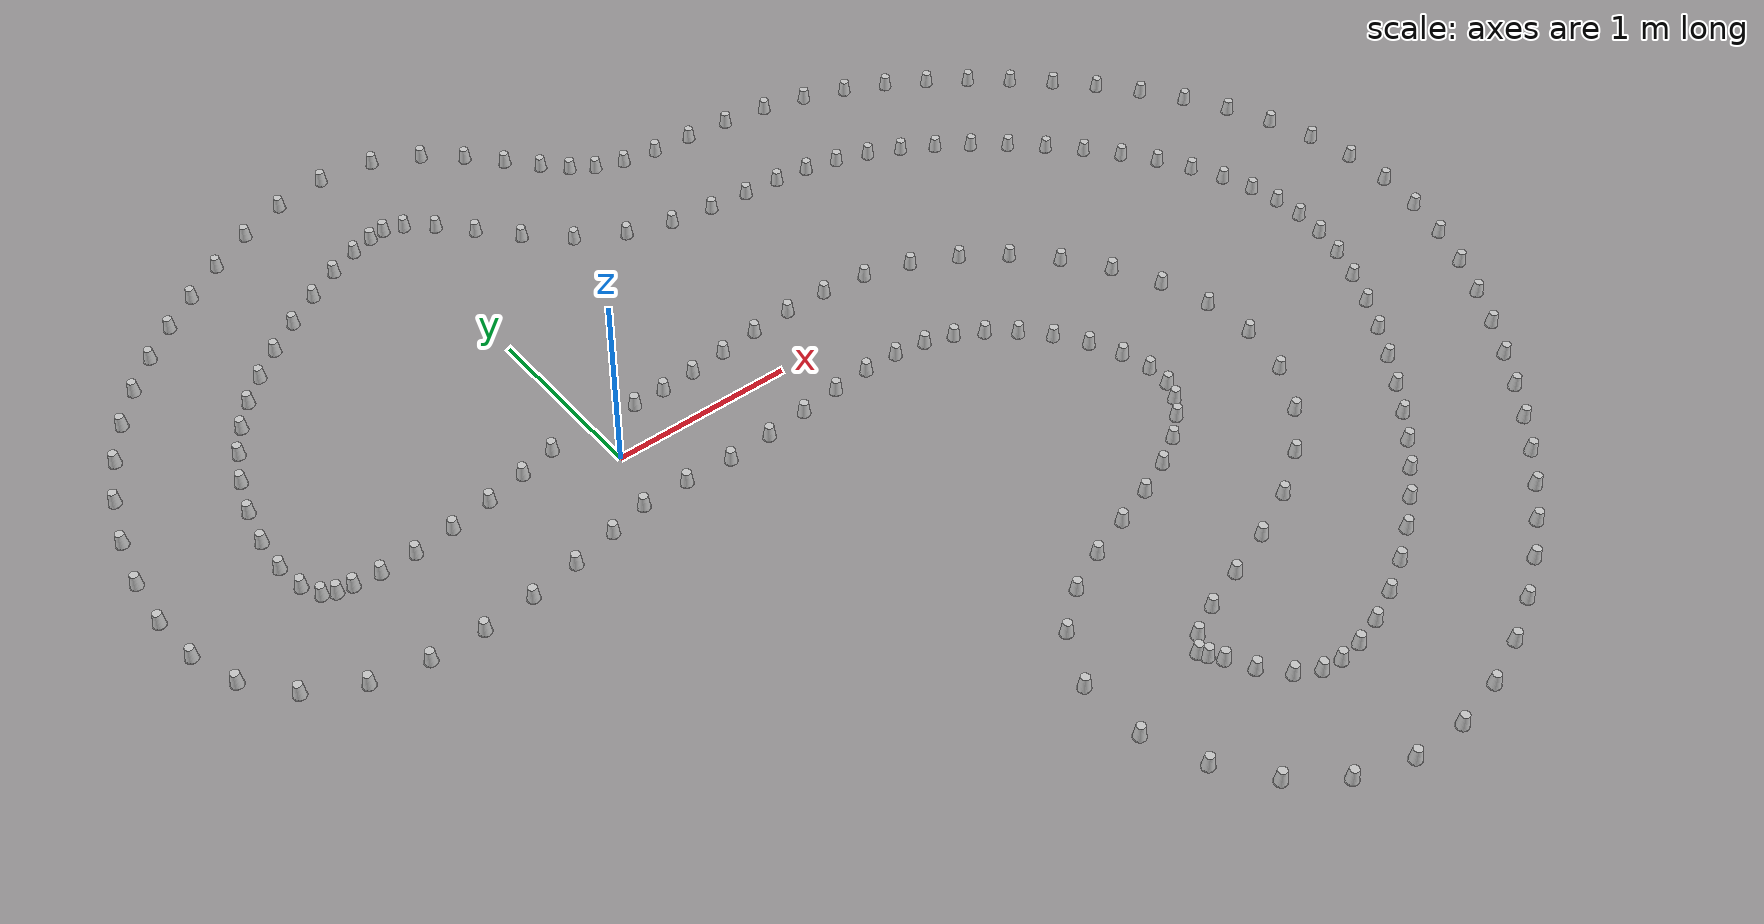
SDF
<?xml version='1.0' encoding='UTF-8'?>
<sdf version="1.4">
  <model name="some track">
    <include>
      <uri>model://cone_yellow</uri>
      <pose>0.15604935393493224 -0.3334835070252163 0 0 0 0</pose>
      <name>cone_right_0</name>
    </include>
    <include>
      <uri>model://cone_yellow</uri>
      <pose>0.41382615954295743 -0.34685669526807394 0 0 0 0</pose>
      <name>cone_right_1</name>
    </include>
    <include>
      <uri>model://cone_yellow</uri>
      <pose>0.661484870196085 -0.3352673267220751 0 0 0 0</pose>
      <name>cone_right_2</name>
    </include>
    <include>
      <uri>model://cone_yellow</uri>
      <pose>0.8976465558253701 -0.31208037490343044 0 0 0 0</pose>
      <name>cone_right_3</name>
    </include>
    <include>
      <uri>model://cone_yellow</uri>
      <pose>1.1212714609668848 -0.2885971753208421 0 0 0 0</pose>
      <name>cone_right_4</name>
    </include>
    <include>
      <uri>model://cone_yellow</uri>
      <pose>1.3304723805199097 -0.27449184079056743 0 0 0 0</pose>
      <name>cone_right_5</name>
    </include>
    <include>
      <uri>model://cone_yellow</uri>
      <pose>1.5223921350977323 -0.2778691734860915 0 0 0 0</pose>
      <name>cone_right_6</name>
    </include>
    <include>
      <uri>model://cone_yellow</uri>
      <pose>1.694066346068126 -0.30482663237660923 0 0 0 0</pose>
      <name>cone_right_7</name>
    </include>
    <include>
      <uri>model://cone_yellow</uri>
      <pose>1.8460134303463234 -0.3587290135685263 0 0 0 0</pose>
      <name>cone_right_8</name>
    </include>
    <include>
      <uri>model://cone_yellow</uri>
      <pose>1.9886112466130885 -0.43976771706629114 0 0 0 0</pose>
      <name>cone_right_9</name>
    </include>
    <include>
      <uri>model://cone_yellow</uri>
      <pose>2.123530219875113 -0.5478519347869223 0 0 0 0</pose>
      <name>cone_right_10</name>
    </include>
    <include>
      <uri>model://cone_yellow</uri>
      <pose>2.246868711723326 -0.6815971025179006 0 0 0 0</pose>
      <name>cone_right_11</name>
    </include>
    <include>
      <uri>model://cone_yellow</uri>
      <pose>2.353318840472178 -0.8377118146302986 0 0 0 0</pose>
      <name>cone_right_12</name>
    </include>
    <include>
      <uri>model://cone_yellow</uri>
      <pose>2.431370692573908 -1.0043705333286037 0 0 0 0</pose>
      <name>cone_right_13</name>
    </include>
    <include>
      <uri>model://cone_yellow</uri>
      <pose>2.4695854538320328 -1.1643450708727725 0 0 0 0</pose>
      <name>cone_right_14</name>
    </include>
    <include>
      <uri>model://cone_yellow</uri>
      <pose>2.4625188135280287 -1.2989076485136604 0 0 0 0</pose>
      <name>cone_right_15</name>
    </include>
    <include>
      <uri>model://cone_yellow</uri>
      <pose>2.415651841369368 -1.3990459019055448 0 0 0 0</pose>
      <name>cone_right_16</name>
    </include>
    <include>
      <uri>model://cone_yellow</uri>
      <pose>2.3349905580878425 -1.493782339644852 0 0 0 0</pose>
      <name>cone_right_17</name>
    </include>
    <include>
      <uri>model://cone_yellow</uri>
      <pose>2.212872940100279 -1.5933700682093441 0 0 0 0</pose>
      <name>cone_right_18</name>
    </include>
    <include>
      <uri>model://cone_yellow</uri>
      <pose>2.049874556861969 -1.6877296773554504 0 0 0 0</pose>
      <name>cone_right_19</name>
    </include>
    <include>
      <uri>model://cone_yellow</uri>
      <pose>1.85396422377327 -1.7677002023366566 0 0 0 0</pose>
      <name>cone_right_20</name>
    </include>
    <include>
      <uri>model://cone_yellow</uri>
      <pose>1.6310798415209924 -1.8405358804747953 0 0 0 0</pose>
      <name>cone_right_21</name>
    </include>
    <include>
      <uri>model://cone_yellow</uri>
      <pose>1.3959860509686064 -1.9190890937939509 0 0 0 0</pose>
      <name>cone_right_22</name>
    </include>
    <include>
      <uri>model://cone_yellow</uri>
      <pose>1.167005028036678 -2.0210350309808645 0 0 0 0</pose>
      <name>cone_right_23</name>
    </include>
    <include>
      <uri>model://cone_yellow</uri>
      <pose>0.9559784781875336 -2.181746709578919 0 0 0 0</pose>
      <name>cone_right_24</name>
    </include>
    <include>
      <uri>model://cone_yellow</uri>
      <pose>0.8036577750287742 -2.464166399048897 0 0 0 0</pose>
      <name>cone_right_25</name>
    </include>
    <include>
      <uri>model://cone_yellow</uri>
      <pose>0.8084128667495627 -2.8158126303729145 0 0 0 0</pose>
      <name>cone_right_26</name>
    </include>
    <include>
      <uri>model://cone_yellow</uri>
      <pose>0.9292089559793738 -3.1194201631842775 0 0 0 0</pose>
      <name>cone_right_27</name>
    </include>
    <include>
      <uri>model://cone_yellow</uri>
      <pose>1.1175997646919325 -3.3722265506706184 0 0 0 0</pose>
      <name>cone_right_28</name>
    </include>
    <include>
      <uri>model://cone_yellow</uri>
      <pose>1.3661723660587524 -3.559779537207848 0 0 0 0</pose>
      <name>cone_right_29</name>
    </include>
    <include>
      <uri>model://cone_yellow</uri>
      <pose>1.6638625885320053 -3.657821038516822 0 0 0 0</pose>
      <name>cone_right_30</name>
    </include>
    <include>
      <uri>model://cone_yellow</uri>
      <pose>1.9680423549768191 -3.6627809610504363 0 0 0 0</pose>
      <name>cone_right_31</name>
    </include>
    <include>
      <uri>model://cone_yellow</uri>
      <pose>2.256091198319912 -3.600624170192459 0 0 0 0</pose>
      <name>cone_right_32</name>
    </include>
    <include>
      <uri>model://cone_yellow</uri>
      <pose>2.5232141416960325 -3.4959317045684593 0 0 0 0</pose>
      <name>cone_right_33</name>
    </include>
    <include>
      <uri>model://cone_yellow</uri>
      <pose>2.7684140818447736 -3.3659086993811416 0 0 0 0</pose>
      <name>cone_right_34</name>
    </include>
    <include>
      <uri>model://cone_yellow</uri>
      <pose>2.9893199243602733 -3.2237157057535444 0 0 0 0</pose>
      <name>cone_right_35</name>
    </include>
    <include>
      <uri>model://cone_yellow</uri>
      <pose>3.187315876547683 -3.075231999302908 0 0 0 0</pose>
      <name>cone_right_36</name>
    </include>
    <include>
      <uri>model://cone_yellow</uri>
      <pose>3.367838482821069 -2.918978849922561 0 0 0 0</pose>
      <name>cone_right_37</name>
    </include>
    <include>
      <uri>model://cone_yellow</uri>
      <pose>3.5335174494079764 -2.7549788267714663 0 0 0 0</pose>
      <name>cone_right_38</name>
    </include>
    <include>
      <uri>model://cone_yellow</uri>
      <pose>3.6869924095479 -2.5835715791134124 0 0 0 0</pose>
      <name>cone_right_39</name>
    </include>
    <include>
      <uri>model://cone_yellow</uri>
      <pose>3.831224306365975 -2.405058280603816 0 0 0 0</pose>
      <name>cone_right_40</name>
    </include>
    <include>
      <uri>model://cone_yellow</uri>
      <pose>3.9694207662037777 -2.2194615688298587 0 0 0 0</pose>
      <name>cone_right_41</name>
    </include>
    <include>
      <uri>model://cone_yellow</uri>
      <pose>4.1031266458969755 -2.0247620213528172 0 0 0 0</pose>
      <name>cone_right_42</name>
    </include>
    <include>
      <uri>model://cone_yellow</uri>
      <pose>4.229605674843785 -1.8187842295858057 0 0 0 0</pose>
      <name>cone_right_43</name>
    </include>
    <include>
      <uri>model://cone_yellow</uri>
      <pose>4.343455219207918 -1.6019074823318973 0 0 0 0</pose>
      <name>cone_right_44</name>
    </include>
    <include>
      <uri>model://cone_yellow</uri>
      <pose>4.438841605174966 -1.374299535508001 0 0 0 0</pose>
      <name>cone_right_45</name>
    </include>
    <include>
      <uri>model://cone_yellow</uri>
      <pose>4.50929878428031 -1.1358318603334545 0 0 0 0</pose>
      <name>cone_right_46</name>
    </include>
    <include>
      <uri>model://cone_yellow</uri>
      <pose>4.547282308825967 -0.8865320244328829 0 0 0 0</pose>
      <name>cone_right_47</name>
    </include>
    <include>
      <uri>model://cone_yellow</uri>
      <pose>4.544851562852825 -0.6289497587793584 0 0 0 0</pose>
      <name>cone_right_48</name>
    </include>
    <include>
      <uri>model://cone_yellow</uri>
      <pose>4.501495123505335 -0.37482875232988316 0 0 0 0</pose>
      <name>cone_right_49</name>
    </include>
    <include>
      <uri>model://cone_yellow</uri>
      <pose>4.423231357649959 -0.13070965522695555 0 0 0 0</pose>
      <name>cone_right_50</name>
    </include>
    <include>
      <uri>model://cone_yellow</uri>
      <pose>4.3162962171155215 0.10192504194179125 0 0 0 0</pose>
      <name>cone_right_51</name>
    </include>
    <include>
      <uri>model://cone_yellow</uri>
      <pose>4.186108016804518 0.32258568213237354 0 0 0 0</pose>
      <name>cone_right_52</name>
    </include>
    <include>
      <uri>model://cone_yellow</uri>
      <pose>4.037304241434606 0.5310644767959131 0 0 0 0</pose>
      <name>cone_right_53</name>
    </include>
    <include>
      <uri>model://cone_yellow</uri>
      <pose>3.8739722293878702 0.7270810574004767 0 0 0 0</pose>
      <name>cone_right_54</name>
    </include>
    <include>
      <uri>model://cone_yellow</uri>
      <pose>3.6998605642305784 0.9101654538541325 0 0 0 0</pose>
      <name>cone_right_55</name>
    </include>
    <include>
      <uri>model://cone_yellow</uri>
      <pose>3.518459195854287 1.0796738911535222 0 0 0 0</pose>
      <name>cone_right_56</name>
    </include>
    <include>
      <uri>model://cone_yellow</uri>
      <pose>3.3304120319657273 1.2356206257951947 0 0 0 0</pose>
      <name>cone_right_57</name>
    </include>
    <include>
      <uri>model://cone_yellow</uri>
      <pose>3.1334727403978415 1.377710998259329 0 0 0 0</pose>
      <name>cone_right_58</name>
    </include>
    <include>
      <uri>model://cone_yellow</uri>
      <pose>2.926663629988214 1.5039532517360057 0 0 0 0</pose>
      <name>cone_right_59</name>
    </include>
    <include>
      <uri>model://cone_yellow</uri>
      <pose>2.7092434324916628 1.6120418052487187 0 0 0 0</pose>
      <name>cone_right_60</name>
    </include>
    <include>
      <uri>model://cone_yellow</uri>
      <pose>2.4807135535145037 1.6994749770237139 0 0 0 0</pose>
      <name>cone_right_61</name>
    </include>
    <include>
      <uri>model://cone_yellow</uri>
      <pose>2.2409490941654195 1.7636346763039072 0 0 0 0</pose>
      <name>cone_right_62</name>
    </include>
    <include>
      <uri>model://cone_yellow</uri>
      <pose>1.9912053570745103 1.8023623202431067 0 0 0 0</pose>
      <name>cone_right_63</name>
    </include>
    <include>
      <uri>model://cone_yellow</uri>
      <pose>1.747899970141603 1.8223404620055028 0 0 0 0</pose>
      <name>cone_right_64</name>
    </include>
    <include>
      <uri>model://cone_yellow</uri>
      <pose>1.5269980950609277 1.8406837646412373 0 0 0 0</pose>
      <name>cone_right_65</name>
    </include>
    <include>
      <uri>model://cone_yellow</uri>
      <pose>1.3353632700017564 1.872619004817793 0 0 0 0</pose>
      <name>cone_right_66</name>
    </include>
    <include>
      <uri>model://cone_yellow</uri>
      <pose>1.1804781857903301 1.927923835501492 0 0 0 0</pose>
      <name>cone_right_67</name>
    </include>
    <include>
      <uri>model://cone_yellow</uri>
      <pose>1.0627729286436831 2.0110720205251824 0 0 0 0</pose>
      <name>cone_right_68</name>
    </include>
    <include>
      <uri>model://cone_yellow</uri>
      <pose>0.9465601133287365 2.129351850944268 0 0 0 0</pose>
      <name>cone_right_69</name>
    </include>
    <include>
      <uri>model://cone_yellow</uri>
      <pose>0.8105160970427668 2.28402101918311 0 0 0 0</pose>
      <name>cone_right_70</name>
    </include>
    <include>
      <uri>model://cone_yellow</uri>
      <pose>0.6549809639167083 2.454125175116474 0 0 0 0</pose>
      <name>cone_right_71</name>
    </include>
    <include>
      <uri>model://cone_yellow</uri>
      <pose>0.4683000649544808 2.616296956436887 0 0 0 0</pose>
      <name>cone_right_72</name>
    </include>
    <include>
      <uri>model://cone_yellow</uri>
      <pose>0.2240972300785319 2.7415514946293333 0 0 0 0</pose>
      <name>cone_right_73</name>
    </include>
    <include>
      <uri>model://cone_yellow</uri>
      <pose>-0.07767778064557296 2.7814861755398423 0 0 0 0</pose>
      <name>cone_right_74</name>
    </include>
    <include>
      <uri>model://cone_yellow</uri>
      <pose>-0.36855201051517106 2.7311746856680164 0 0 0 0</pose>
      <name>cone_right_75</name>
    </include>
    <include>
      <uri>model://cone_yellow</uri>
      <pose>-0.6334141915596357 2.6289872598984947 0 0 0 0</pose>
      <name>cone_right_76</name>
    </include>
    <include>
      <uri>model://cone_yellow</uri>
      <pose>-0.8760490969471346 2.5005143008197104 0 0 0 0</pose>
      <name>cone_right_77</name>
    </include>
    <include>
      <uri>model://cone_yellow</uri>
      <pose>-1.096823475806877 2.363027821554219 0 0 0 0</pose>
      <name>cone_right_78</name>
    </include>
    <include>
      <uri>model://cone_yellow</uri>
      <pose>-1.2965366456506409 2.2252952628529012 0 0 0 0</pose>
      <name>cone_right_79</name>
    </include>
    <include>
      <uri>model://cone_yellow</uri>
      <pose>-1.4835687610703818 2.0783797457209885 0 0 0 0</pose>
      <name>cone_right_80</name>
    </include>
    <include>
      <uri>model://cone_yellow</uri>
      <pose>-1.658374324702346 1.915084302954025 0 0 0 0</pose>
      <name>cone_right_81</name>
    </include>
    <include>
      <uri>model://cone_yellow</uri>
      <pose>-1.8185557814243996 1.7297735715700109 0 0 0 0</pose>
      <name>cone_right_82</name>
    </include>
    <include>
      <uri>model://cone_yellow</uri>
      <pose>-1.9607413148991248 1.5181584744209955 0 0 0 0</pose>
      <name>cone_right_83</name>
    </include>
    <include>
      <uri>model://cone_yellow</uri>
      <pose>-2.081650631288359 1.2776336533461283 0 0 0 0</pose>
      <name>cone_right_84</name>
    </include>
    <include>
      <uri>model://cone_yellow</uri>
      <pose>-2.1772426220830585 1.0126321166489953 0 0 0 0</pose>
      <name>cone_right_85</name>
    </include>
    <include>
      <uri>model://cone_yellow</uri>
      <pose>-2.2417455106988777 0.7360067138739665 0 0 0 0</pose>
      <name>cone_right_86</name>
    </include>
    <include>
      <uri>model://cone_yellow</uri>
      <pose>-2.2684813746746286 0.4576370057820427 0 0 0 0</pose>
      <name>cone_right_87</name>
    </include>
    <include>
      <uri>model://cone_yellow</uri>
      <pose>-2.247078908653756 0.18527606568909707 0 0 0 0</pose>
      <name>cone_right_88</name>
    </include>
    <include>
      <uri>model://cone_yellow</uri>
      <pose>-2.1584866611223306 -0.07533195045698743 0 0 0 0</pose>
      <name>cone_right_89</name>
    </include>
    <include>
      <uri>model://cone_yellow</uri>
      <pose>-1.969818524991495 -0.3061168227139982 0 0 0 0</pose>
      <name>cone_right_90</name>
    </include>
    <include>
      <uri>model://cone_yellow</uri>
      <pose>-1.6978667843723747 -0.4514892088598545 0 0 0 0</pose>
      <name>cone_right_91</name>
    </include>
    <include>
      <uri>model://cone_yellow</uri>
      <pose>-1.408297228164652 -0.5081292582830232 0 0 0 0</pose>
      <name>cone_right_92</name>
    </include>
    <include>
      <uri>model://cone_yellow</uri>
      <pose>-1.1195744493958113 -0.5115956543737051 0 0 0 0</pose>
      <name>cone_right_93</name>
    </include>
    <include>
      <uri>model://cone_yellow</uri>
      <pose>-0.8361751255732464 -0.4836756268372843 0 0 0 0</pose>
      <name>cone_right_94</name>
    </include>
    <include>
      <uri>model://cone_yellow</uri>
      <pose>-0.5647550177701811 -0.4376436456469914 0 0 0 0</pose>
      <name>cone_right_95</name>
    </include>
    <include>
      <uri>model://cone_yellow</uri>
      <pose>-0.3150013916019693 -0.383907277634532 0 0 0 0</pose>
      <name>cone_right_96</name>
    </include>
    <include>
      <uri>model://cone_yellow</uri>
      <pose>-0.0987651446475288 -0.3320727829088281 0 0 0 0</pose>
      <name>cone_right_97</name>
    </include>
    <include>
      <uri>model://cone_blue</uri>
      <pose>0.2639047861374877 0.25674289508197506 0 0 0 0</pose>
      <name>cone_left_0</name>
    </include>
    <include>
      <uri>model://cone_blue</uri>
      <pose>0.4380634793646718 0.25265356513441484 0 0 0 0</pose>
      <name>cone_left_1</name>
    </include>
    <include>
      <uri>model://cone_blue</uri>
      <pose>0.6303501080945241 0.26392431756953144 0 0 0 0</pose>
      <name>cone_left_2</name>
    </include>
    <include>
      <uri>model://cone_blue</uri>
      <pose>0.8381720841809708 0.28496467132224546 0 0 0 0</pose>
      <name>cone_left_3</name>
    </include>
    <include>
      <uri>model://cone_blue</uri>
      <pose>1.0585976448729197 0.30812050731996904 0 0 0 0</pose>
      <name>cone_left_4</name>
    </include>
    <include>
      <uri>model://cone_blue</uri>
      <pose>1.2895424770560724 0.3241104837976695 0 0 0 0</pose>
      <name>cone_left_5</name>
    </include>
    <include>
      <uri>model://cone_blue</uri>
      <pose>1.5298922419021215 0.32208394834754195 0 0 0 0</pose>
      <name>cone_left_6</name>
    </include>
    <include>
      <uri>model://cone_blue</uri>
      <pose>1.7786397998282752 0.28918290535749136 0 0 0 0</pose>
      <name>cone_left_7</name>
    </include>
    <include>
      <uri>model://cone_blue</uri>
      <pose>2.0310092447313255 0.2120393708572667 0 0 0 0</pose>
      <name>cone_left_8</name>
    </include>
    <include>
      <uri>model://cone_blue</uri>
      <pose>2.270322920242687 0.08998555846941572 0 0 0 0</pose>
      <name>cone_left_9</name>
    </include>
    <include>
      <uri>model://cone_blue</uri>
      <pose>2.4877223703035454 -0.0710248407933933 0 0 0 0</pose>
      <name>cone_left_10</name>
    </include>
    <include>
      <uri>model://cone_blue</uri>
      <pose>2.6799175622176024 -0.2663036001781862 0 0 0 0</pose>
      <name>cone_left_11</name>
    </include>
    <include>
      <uri>model://cone_blue</uri>
      <pose>2.843058019478626 -0.4910772281475148 0 0 0 0</pose>
      <name>cone_left_12</name>
    </include>
    <include>
      <uri>model://cone_blue</uri>
      <pose>2.969473469092467 -0.7389550064598503 0 0 0 0</pose>
      <name>cone_left_13</name>
    </include>
    <include>
      <uri>model://cone_blue</uri>
      <pose>3.0482383862452087 -1.0057235596908622 0 0 0 0</pose>
      <name>cone_left_14</name>
    </include>
    <include>
      <uri>model://cone_blue</uri>
      <pose>3.0624314279339004 -1.2886677717218271 0 0 0 0</pose>
      <name>cone_left_15</name>
    </include>
    <include>
      <uri>model://cone_blue</uri>
      <pose>2.988655304733682 -1.5769982297141503 0 0 0 0</pose>
      <name>cone_left_16</name>
    </include>
    <include>
      <uri>model://cone_blue</uri>
      <pose>2.8305430246791796 -1.8320540541810246 0 0 0 0</pose>
      <name>cone_left_17</name>
    </include>
    <include>
      <uri>model://cone_blue</uri>
      <pose>2.615930931831444 -2.0378295773905966 0 0 0 0</pose>
      <name>cone_left_18</name>
    </include>
    <include>
      <uri>model://cone_blue</uri>
      <pose>2.364438952166747 -2.1986594584472745 0 0 0 0</pose>
      <name>cone_left_19</name>
    </include>
    <include>
      <uri>model://cone_blue</uri>
      <pose>2.0893793647767613 -2.319587610587929 0 0 0 0</pose>
      <name>cone_left_20</name>
    </include>
    <include>
      <uri>model://cone_blue</uri>
      <pose>1.8199599295401467 -2.410030667413075 0 0 0 0</pose>
      <name>cone_left_21</name>
    </include>
    <include>
      <uri>model://cone_blue</uri>
      <pose>1.5861352847375292 -2.488161381730283 0 0 0 0</pose>
      <name>cone_left_22</name>
    </include>
    <include>
      <uri>model://cone_blue</uri>
      <pose>1.4144928775837071 -2.567615093118688 0 0 0 0</pose>
      <name>cone_left_23</name>
    </include>
    <include>
      <uri>model://cone_blue</uri>
      <pose>1.3381006257517165 -2.6443293123007865 0 0 0 0</pose>
      <name>cone_left_24</name>
    </include>
    <include>
      <uri>model://cone_blue</uri>
      <pose>1.360955887008398 -2.6864698276863037 0 0 0 0</pose>
      <name>cone_left_25</name>
    </include>
    <include>
      <uri>model://cone_blue</uri>
      <pose>1.4043429861034438 -2.7460466440553035 0 0 0 0</pose>
      <name>cone_left_26</name>
    </include>
    <include>
      <uri>model://cone_blue</uri>
      <pose>1.4768492679652856 -2.8742873651176515 0 0 0 0</pose>
      <name>cone_left_27</name>
    </include>
    <include>
      <uri>model://cone_blue</uri>
      <pose>1.5879894647060178 -2.999757048401427 0 0 0 0</pose>
      <name>cone_left_28</name>
    </include>
    <include>
      <uri>model://cone_blue</uri>
      <pose>1.707059513623617 -3.0660225599152833 0 0 0 0</pose>
      <name>cone_left_29</name>
    </include>
    <include>
      <uri>model://cone_blue</uri>
      <pose>1.8197905809690544 -3.0784364847232712 0 0 0 0</pose>
      <name>cone_left_30</name>
    </include>
    <include>
      <uri>model://cone_blue</uri>
      <pose>1.9536327880918791 -3.0629540156885353 0 0 0 0</pose>
      <name>cone_left_31</name>
    </include>
    <include>
      <uri>model://cone_blue</uri>
      <pose>2.116308664330192 -3.017133944746126 0 0 0 0</pose>
      <name>cone_left_32</name>
    </include>
    <include>
      <uri>model://cone_blue</uri>
      <pose>2.297715248814073 -2.939918890589311 0 0 0 0</pose>
      <name>cone_left_33</name>
    </include>
    <include>
      <uri>model://cone_blue</uri>
      <pose>2.483951707068746 -2.8376273753342067 0 0 0 0</pose>
      <name>cone_left_34</name>
    </include>
    <include>
      <uri>model://cone_blue</uri>
      <pose>2.662647479714446 -2.7204413134891268 0 0 0 0</pose>
      <name>cone_left_35</name>
    </include>
    <include>
      <uri>model://cone_blue</uri>
      <pose>2.825882301991703 -2.596310532688926 0 0 0 0</pose>
      <name>cone_left_36</name>
    </include>
    <include>
      <uri>model://cone_blue</uri>
      <pose>2.9737708371893823 -2.4665291945283947 0 0 0 0</pose>
      <name>cone_left_37</name>
    </include>
    <include>
      <uri>model://cone_blue</uri>
      <pose>3.110203902370152 -2.329766361180139 0 0 0 0</pose>
      <name>cone_left_38</name>
    </include>
    <include>
      <uri>model://cone_blue</uri>
      <pose>3.239062387584727 -2.184374014711935 0 0 0 0</pose>
      <name>cone_left_39</name>
    </include>
    <include>
      <uri>model://cone_blue</uri>
      <pose>3.363905872998192 -2.0287426127999355 0 0 0 0</pose>
      <name>cone_left_40</name>
    </include>
    <include>
      <uri>model://cone_blue</uri>
      <pose>3.4878267611862914 -1.8615967698746987 0 0 0 0</pose>
      <name>cone_left_41</name>
    </include>
    <include>
      <uri>model://cone_blue</uri>
      <pose>3.6082086753294598 -1.6855626663868455 0 0 0 0</pose>
      <name>cone_left_42</name>
    </include>
    <include>
      <uri>model://cone_blue</uri>
      <pose>3.717782127937873 -1.5056761702314485 0 0 0 0</pose>
      <name>cone_left_43</name>
    </include>
    <include>
      <uri>model://cone_blue</uri>
      <pose>3.811407336481631 -1.3245538263500896 0 0 0 0</pose>
      <name>cone_left_44</name>
    </include>
    <include>
      <uri>model://cone_blue</uri>
      <pose>3.8843755584089443 -1.145023712570519 0 0 0 0</pose>
      <name>cone_left_45</name>
    </include>
    <include>
      <uri>model://cone_blue</uri>
      <pose>3.932610425818239 -0.9702101914180578 0 0 0 0</pose>
      <name>cone_left_46</name>
    </include>
    <include>
      <uri>model://cone_blue</uri>
      <pose>3.9531139700412985 -0.8030815290127393 0 0 0 0</pose>
      <name>cone_left_47</name>
    </include>
    <include>
      <uri>model://cone_blue</uri>
      <pose>3.945042145234849 -0.6440713505204545 0 0 0 0</pose>
      <name>cone_left_48</name>
    </include>
    <include>
      <uri>model://cone_blue</uri>
      <pose>3.9115733341648022 -0.4843380325816699 0 0 0 0</pose>
      <name>cone_left_49</name>
    </include>
    <include>
      <uri>model://cone_blue</uri>
      <pose>3.8539428053901665 -0.32021043165267216 0 0 0 0</pose>
      <name>cone_left_50</name>
    </include>
    <include>
      <uri>model://cone_blue</uri>
      <pose>3.773180451096636 -0.15307547708065977 0 0 0 0</pose>
      <name>cone_left_51</name>
    </include>
    <include>
      <uri>model://cone_blue</uri>
      <pose>3.6711338003962397 0.014687068243516344 0 0 0 0</pose>
      <name>cone_left_52</name>
    </include>
    <include>
      <uri>model://cone_blue</uri>
      <pose>3.5504312125858357 0.18041557293391 0 0 0 0</pose>
      <name>cone_left_53</name>
    </include>
    <include>
      <uri>model://cone_blue</uri>
      <pose>3.414251193297869 0.34152098558761934 0 0 0 0</pose>
      <name>cone_left_54</name>
    </include>
    <include>
      <uri>model://cone_blue</uri>
      <pose>3.2661110029805873 0.4956038563617452 0 0 0 0</pose>
      <name>cone_left_55</name>
    </include>
    <include>
      <uri>model://cone_blue</uri>
      <pose>3.1097184479408866 0.6404347751868382 0 0 0 0</pose>
      <name>cone_left_56</name>
    </include>
    <include>
      <uri>model://cone_blue</uri>
      <pose>2.9483991493183175 0.7729477851276059 0 0 0 0</pose>
      <name>cone_left_57</name>
    </include>
    <include>
      <uri>model://cone_blue</uri>
      <pose>2.783804175423158 0.8901334201565767 0 0 0 0</pose>
      <name>cone_left_58</name>
    </include>
    <include>
      <uri>model://cone_blue</uri>
      <pose>2.6159704545833584 0.9906602060429555 0 0 0 0</pose>
      <name>cone_left_59</name>
    </include>
    <include>
      <uri>model://cone_blue</uri>
      <pose>2.4446984922096204 1.0735104927225383 0 0 0 0</pose>
      <name>cone_left_60</name>
    </include>
    <include>
      <uri>model://cone_blue</uri>
      <pose>2.2695461198611633 1.1378627309283655 0 0 0 0</pose>
      <name>cone_left_61</name>
    </include>
    <include>
      <uri>model://cone_blue</uri>
      <pose>2.0896974735948333 1.1830117803768077 0 0 0 0</pose>
      <name>cone_left_62</name>
    </include>
    <include>
      <uri>model://cone_blue</uri>
      <pose>1.9033573125105114 1.2088282259685812 0 0 0 0</pose>
      <name>cone_left_63</name>
    </include>
    <include>
      <uri>model://cone_blue</uri>
      <pose>1.7004889830425611 1.2242165632167197 0 0 0 0</pose>
      <name>cone_left_64</name>
    </include>
    <include>
      <uri>model://cone_blue</uri>
      <pose>1.4773516954332238 1.2427412632215722 0 0 0 0</pose>
      <name>cone_left_65</name>
    </include>
    <include>
      <uri>model://cone_blue</uri>
      <pose>1.2394896683428567 1.280328322378038 0 0 0 0</pose>
      <name>cone_left_66</name>
    </include>
    <include>
      <uri>model://cone_blue</uri>
      <pose>0.9918279677748498 1.358352860782176 0 0 0 0</pose>
      <name>cone_left_67</name>
    </include>
    <include>
      <uri>model://cone_blue</uri>
      <pose>0.745685433872267 1.5017042548984327 0 0 0 0</pose>
      <name>cone_left_68</name>
    </include>
    <include>
      <uri>model://cone_blue</uri>
      <pose>0.5341703164404628 1.6935369184070177 0 0 0 0</pose>
      <name>cone_left_69</name>
    </include>
    <include>
      <uri>model://cone_blue</uri>
      <pose>0.3621429585400008 1.8853212215042308 0 0 0 0</pose>
      <name>cone_left_70</name>
    </include>
    <include>
      <uri>model://cone_blue</uri>
      <pose>0.21222995288810692 2.049191177737702 0 0 0 0</pose>
      <name>cone_left_71</name>
    </include>
    <include>
      <uri>model://cone_blue</uri>
      <pose>0.0790526253290233 2.1596938128372996 0 0 0 0</pose>
      <name>cone_left_72</name>
    </include>
    <include>
      <uri>model://cone_blue</uri>
      <pose>-0.028008180030526547 2.197085827948923 0 0 0 0</pose>
      <name>cone_left_73</name>
    </include>
    <include>
      <uri>model://cone_blue</uri>
      <pose>-0.11693908131718783 2.1827720949725213 0 0 0 0</pose>
      <name>cone_left_74</name>
    </include>
    <include>
      <uri>model://cone_blue</uri>
      <pose>-0.24379955097232553 2.144287282635705 0 0 0 0</pose>
      <name>cone_left_75</name>
    </include>
    <include>
      <uri>model://cone_blue</uri>
      <pose>-0.408447128215376 2.07275905096779 0 0 0 0</pose>
      <name>cone_left_76</name>
    </include>
    <include>
      <uri>model://cone_blue</uri>
      <pose>-0.5918433111269532 1.9720948922943107 0 0 0 0</pose>
      <name>cone_left_77</name>
    </include>
    <include>
      <uri>model://cone_blue</uri>
      <pose>-0.7783706141039848 1.854512556421265 0 0 0 0</pose>
      <name>cone_left_78</name>
    </include>
    <include>
      <uri>model://cone_blue</uri>
      <pose>-0.9552650664085569 1.7318039162199395 0 0 0 0</pose>
      <name>cone_left_79</name>
    </include>
    <include>
      <uri>model://cone_blue</uri>
      <pose>-1.1117431206818682 1.607480931590318 0 0 0 0</pose>
      <name>cone_left_80</name>
    </include>
    <include>
      <uri>model://cone_blue</uri>
      <pose>-1.2466762228406945 1.4786158929590825 0 0 0 0</pose>
      <name>cone_left_81</name>
    </include>
    <include>
      <uri>model://cone_blue</uri>
      <pose>-1.3617878765601776 1.3407194865304766 0 0 0 0</pose>
      <name>cone_left_82</name>
    </include>
    <include>
      <uri>model://cone_blue</uri>
      <pose>-1.4597758467307613 1.1879561126746685 0 0 0 0</pose>
      <name>cone_left_83</name>
    </include>
    <include>
      <uri>model://cone_blue</uri>
      <pose>-1.54322088173538 1.0128820626118775 0 0 0 0</pose>
      <name>cone_left_84</name>
    </include>
    <include>
      <uri>model://cone_blue</uri>
      <pose>-1.6113421993298722 0.8132412654853443 0 0 0 0</pose>
      <name>cone_left_85</name>
    </include>
    <include>
      <uri>model://cone_blue</uri>
      <pose>-1.656453994736014 0.6039694413260503 0 0 0 0</pose>
      <name>cone_left_86</name>
    </include>
    <include>
      <uri>model://cone_blue</uri>
      <pose>-1.6706905312577929 0.406196676010666 0 0 0 0</pose>
      <name>cone_left_87</name>
    </include>
    <include>
      <uri>model://cone_blue</uri>
      <pose>-1.6498794550945584 0.24317954286099017 0 0 0 0</pose>
      <name>cone_left_88</name>
    </include>
    <include>
      <uri>model://cone_blue</uri>
      <pose>-1.5985285586030353 0.14018353256683283 0 0 0 0</pose>
      <name>cone_left_89</name>
    </include>
    <include>
      <uri>model://cone_blue</uri>
      <pose>-1.5362484661612175 0.10863250409185658 0 0 0 0</pose>
      <name>cone_left_90</name>
    </include>
    <include>
      <uri>model://cone_blue</uri>
      <pose>-1.454356434997192 0.09687445673732614 0 0 0 0</pose>
      <name>cone_left_91</name>
    </include>
    <include>
      <uri>model://cone_blue</uri>
      <pose>-1.3130848718076134 0.08426808066857955 0 0 0 0</pose>
      <name>cone_left_92</name>
    </include>
    <include>
      <uri>model://cone_blue</uri>
      <pose>-1.1204086284990926 0.08840376574703437 0 0 0 0</pose>
      <name>cone_left_93</name>
    </include>
    <include>
      <uri>model://cone_blue</uri>
      <pose>-0.8982904724983061 0.11310044814928838 0 0 0 0</pose>
      <name>cone_left_94</name>
    </include>
    <include>
      <uri>model://cone_blue</uri>
      <pose>-0.6665140876661276 0.15366430431978512 0 0 0 0</pose>
      <name>cone_left_95</name>
    </include>
    <include>
      <uri>model://cone_blue</uri>
      <pose>-0.44183165332127866 0.20253460756144498 0 0 0 0</pose>
      <name>cone_left_96</name>
    </include>
    <include>
      <uri>model://cone_blue</uri>
      <pose>-0.23883171681891752 0.2513493244544061 0 0 0 0</pose>
      <name>cone_left_97</name>
    </include>

  </model>
</sdf>

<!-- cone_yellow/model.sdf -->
<sdf version='1.4'>
  <model name="cone_yellow">
    <link name="link">
    <collision name="collision"><geometry><box><size> 0.05 0.05 0.01</size>
             </box></geometry></collision>
      <visual name="visual">
        <geometry>
          <mesh>
            <uri>model://cup.dae</uri>
            <scale>1 1 1</scale>
          </mesh>
        </geometry>
        <material>
            <script>
              <uri>model://cone_yellow/materials/scripts</uri>
              <uri>model://cone_yellow/materials/textures</uri>
              <name>cone_yellow/Image</name>
            </script>
        </material>
      </visual>
    </link>
  </model>
</sdf>

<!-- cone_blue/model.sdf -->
<sdf version='1.4'>
  <model name="cone_blue">
    <link name="link">
    <collision name="collision"><geometry><box><size> 0.05 0.05 0.01</size>
             </box></geometry></collision>
      <visual name="visual">
        <geometry>
          <mesh>
            <uri>model://cup.dae</uri>
            <scale>1 1 1</scale>
          </mesh>
        </geometry>
        <material>
            <script>
              <uri>model://cone_blue/materials/scripts</uri>
              <uri>model://cone_blue/materials/textures</uri>
              <name>cone_blue/Image</name>
            </script>
        </material>
      </visual>
    </link>
  </model>
</sdf>
